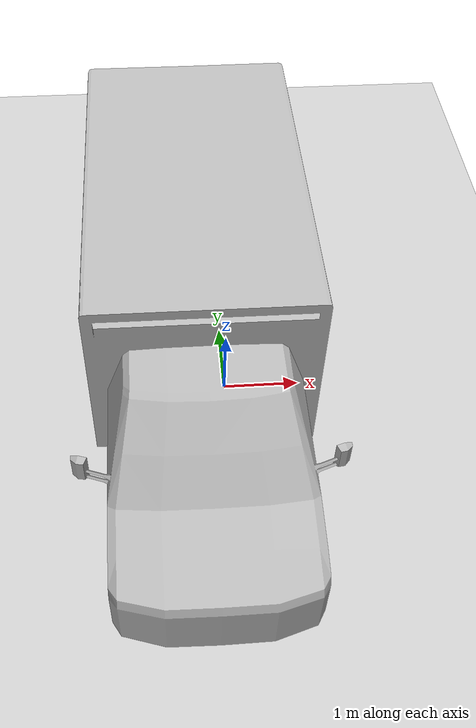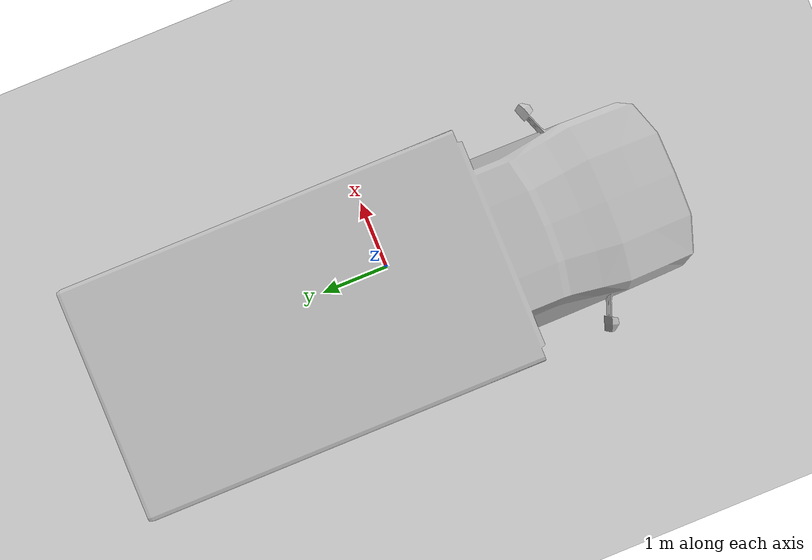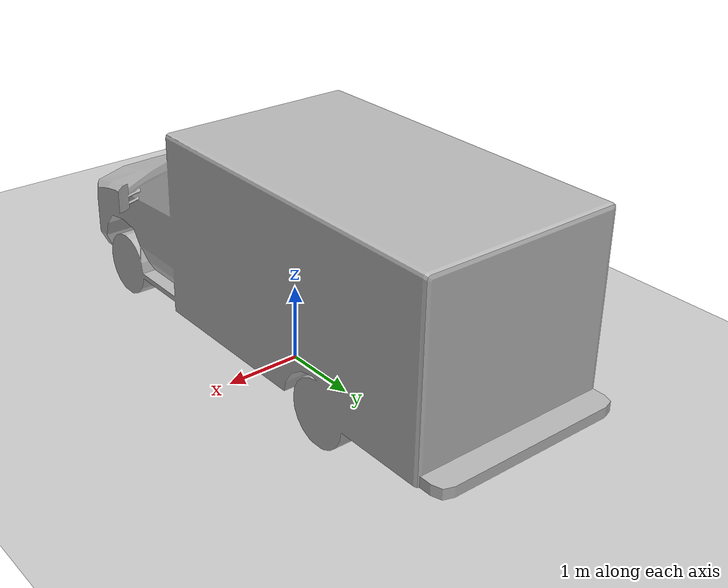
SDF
<sdf version="1.6">
 <world name="default">
  <model name="ground_plane">
   <static>1</static>
   <link name="link">
    <collision name="collision">
     <geometry><plane><normal>0 0 1</normal><size>100 100</size></plane></geometry>
     <surface>
      <contact><collide_bitmask>65535</collide_bitmask></contact>
      <friction><ode><mu>100</mu><mu2>50</mu2></ode></friction>
     </surface>
    </collision>
    <visual name="visual">
     <cast_shadows>0</cast_shadows>
     <geometry><plane><normal>0 0 1</normal><size>100 100</size></plane></geometry>
     <material>
      <script><uri>file://media/materials/scripts/gazebo.material</uri><name>Gazebo/Grey</name></script>
     </material>
    </visual>
   </link>
  </model>
  <light name="sun" type="directional">
   <pose>0 0 10 0 -0 0</pose>
   <diffuse>0.8 0.8 0.8 1</diffuse>
   <specular>0.2 0.2 0.2 1</specular>
   <attenuation>
    <range>1000</range>
    <constant>0.9</constant>
    <linear>0.01</linear>
    <quadratic>0.001</quadratic>
   </attenuation>
   <direction>-0.5 0.1 -0.9</direction>
  </light>
  <plugin name="ros_interface_plugin" filename="librotors_gazebo_ros_interface_plugin.so"/>
  <spherical_coordinates>
   <surface_model>EARTH_WGS84</surface_model>
   <latitude_deg>47.3667</latitude_deg>
   <longitude_deg>8.55</longitude_deg>
   <elevation>500</elevation>
   <heading_deg>0</heading_deg>
  </spherical_coordinates>
  <physics name="default_physics" default="0" type="ode">
   <ode>
    <solver>
     <type>quick</type>
     <iters>1000</iters>
     <sor>1.3</sor>
     <use_dynamic_moi_rescaling>0</use_dynamic_moi_rescaling>
    </solver>
    <constraints>
     <cfm>0</cfm>
     <erp>0.2</erp>
     <contact_max_correcting_vel>100</contact_max_correcting_vel>
     <contact_surface_layer>0.001</contact_surface_layer>
    </constraints>
   </ode>
   <max_step_size>0.01</max_step_size>
   <real_time_factor>1</real_time_factor>
   <real_time_update_rate>100</real_time_update_rate>
  </physics>
  <gravity>0 0 -9.8</gravity>
  <magnetic_field>6e-06 2.3e-05 -4.2e-05</magnetic_field>
  <atmosphere type="adiabatic"/>
  <scene><ambient>0.4 0.4 0.4 1</ambient><background>0.7 0.7 0.7 1</background><shadows>1</shadows></scene>
  <model name="asphalt_plane_34">
   <link name="link">
    <inertial>
     <mass>1</mass>
     <inertia><ixx>1</ixx><ixy>0</ixy><ixz>0</ixz><iyy>1</iyy><iyz>0</iyz><izz>1</izz></inertia>
    </inertial>
    <visual name="visual">
     <cast_shadows>0</cast_shadows>
     <geometry><box><size>34 34 0.1</size></box></geometry>
     <material>
      <script>
       <uri>model://asphalt_plane/materials/scripts</uri>
       <uri>model://asphalt_plane/materials/textures</uri>
       <name>vrc/asphalt</name>
      </script>
      <shader type="vertex"><normal_map>__default__</normal_map></shader>
      <ambient>0.5 0.5 0.5 1</ambient>
      <diffuse>0.5 0.5 0.5 1</diffuse>
      <specular>0.2 0.2 0.2 1</specular>
      <emissive>0 0 0 1</emissive>
     </material>
    </visual>
    <collision name="collision">
     <geometry><box><size>34 34 0.1</size></box></geometry>
     <surface>
      <friction>
       <ode><mu>1</mu><mu2>1</mu2><fdir1>0 0 0</fdir1><slip1>0</slip1><slip2>0</slip2></ode>
       <torsional>
        <coefficient>1</coefficient>
        <patch_radius>0</patch_radius>
        <surface_radius>0</surface_radius>
        <use_patch_radius>1</use_patch_radius>
        <ode><slip>0</slip></ode>
       </torsional>
      </friction>
      <bounce><restitution_coefficient>0</restitution_coefficient><threshold>1e+06</threshold></bounce>
      <contact>
       <collide_without_contact>0</collide_without_contact>
       <collide_without_contact_bitmask>1</collide_without_contact_bitmask>
       <collide_bitmask>1</collide_bitmask>
       <ode>
        <soft_cfm>0</soft_cfm>
        <soft_erp>0.2</soft_erp>
        <kp>1e+13</kp>
        <kd>1</kd>
        <max_vel>0.01</max_vel>
        <min_depth>0</min_depth>
       </ode>
       <bullet>
        <split_impulse>1</split_impulse>
        <split_impulse_penetration_threshold>-0.01</split_impulse_penetration_threshold>
        <soft_cfm>0</soft_cfm>
        <soft_erp>0.2</soft_erp>
        <kp>1e+13</kp>
        <kd>1</kd>
       </bullet>
      </contact>
     </surface>
    </collision>
   </link>
   <static>1</static>
   <pose>38.7469 64.5634 0 0 -0 0</pose>
  </model>
  <model name="ambulance">
   <static>1</static>
   <link name="link">
    <collision name="collision">
     <geometry>
      <mesh><scale>0.0254 0.0254 0.0254</scale><uri>model://ambulance/meshes/ambulance.obj</uri></mesh>
     </geometry>
    </collision>
    <visual name="visual">
     <geometry>
      <mesh><scale>0.0254 0.0254 0.0254</scale><uri>model://ambulance/meshes/ambulance.obj</uri></mesh>
     </geometry>
    </visual>
   </link>
   <pose>-0.33457 -0.005494 0 0 -0 0</pose>
  </model>
 </world>
</sdf>
